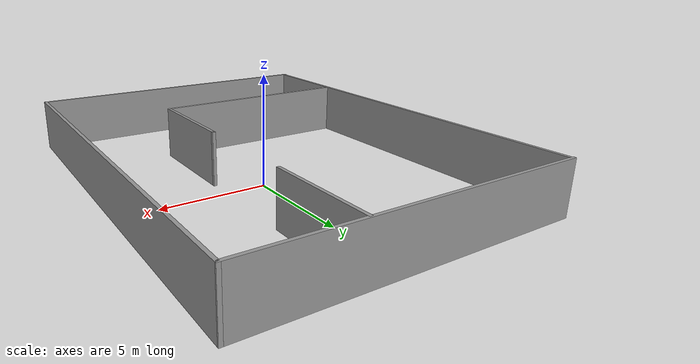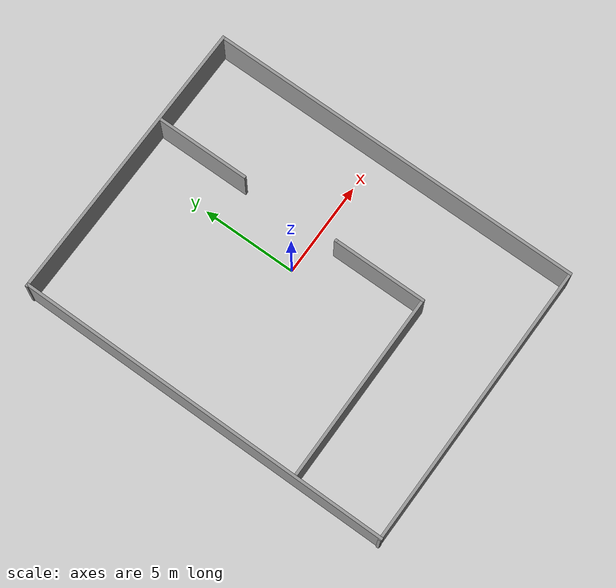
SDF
<?xml version='1.0'?>
<sdf version='1.6'>
  <model name='proj1'>
    <pose frame=''>-0.679717 -0.913886 0 0 -0 0</pose>
    <link name='Wall_0'>
      <collision name='Wall_0_Collision'>
        <geometry>
          <box>
            <size>19.9137 0.15 2.5</size>
          </box>
        </geometry>
        <pose frame=''>0 0 1.25 0 -0 0</pose>
      </collision>
      <visual name='Wall_0_Visual'>
        <pose frame=''>0 0 1.25 0 -0 0</pose>
        <geometry>
          <box>
            <size>19.9137 0.15 2.5</size>
          </box>
        </geometry>
        <material>
          <script>
            <uri>file://media/materials/scripts/gazebo.material</uri>
            <name>Gazebo/Grey</name>
          </script>
          <ambient>1 1 1 1</ambient>
        </material>
        <meta>
          <layer>0</layer>
        </meta>
      </visual>
      <pose frame=''>-7.46155 0.012801 0 0 -0 1.56832</pose>
    </link>
    <link name='Wall_1'>
      <collision name='Wall_1_Collision'>
        <geometry>
          <box>
            <size>15.1707 0.15 2.5</size>
          </box>
        </geometry>
        <pose frame=''>0 0 1.25 0 -0 0</pose>
      </collision>
      <visual name='Wall_1_Visual'>
        <pose frame=''>0 0 1.25 0 -0 0</pose>
        <geometry>
          <box>
            <size>15.1707 0.15 2.5</size>
          </box>
        </geometry>
        <material>
          <script>
            <uri>file://media/materials/scripts/gazebo.material</uri>
            <name>Gazebo/Grey</name>
          </script>
          <ambient>1 1 1 1</ambient>
        </material>
        <meta>
          <layer>0</layer>
        </meta>
      </visual>
      <pose frame=''>0.024442 9.88193 0 0 -0 -0.004933</pose>
    </link>
    <link name='Wall_10'>
      <collision name='Wall_10_Collision'>
        <geometry>
          <box>
            <size>0.15 0.15 2.5</size>
          </box>
        </geometry>
        <pose frame=''>0 0 1.25 0 -0 0</pose>
      </collision>
      <visual name='Wall_10_Visual'>
        <pose frame=''>0 0 1.25 0 -0 0</pose>
        <geometry>
          <box>
            <size>0.15 0.15 2.5</size>
          </box>
        </geometry>
        <material>
          <script>
            <uri>file://media/materials/scripts/gazebo.material</uri>
            <name>Gazebo/Grey</name>
          </script>
          <ambient>1 1 1 1</ambient>
        </material>
        <meta>
          <layer>0</layer>
        </meta>
      </visual>
      <pose frame=''>2.51072 -0.305114 0 0 -0 0</pose>
    </link>
    <link name='Wall_12'>
      <collision name='Wall_12_Collision'>
        <geometry>
          <box>
            <size>5 0.15 2.5</size>
          </box>
        </geometry>
        <pose frame=''>0 0 1.25 0 -0 0</pose>
      </collision>
      <visual name='Wall_12_Visual'>
        <pose frame=''>0 0 1.25 0 -0 0</pose>
        <geometry>
          <box>
            <size>5 0.15 2.5</size>
          </box>
        </geometry>
        <material>
          <script>
            <uri>file://media/materials/scripts/gazebo.material</uri>
            <name>Gazebo/Grey</name>
          </script>
          <ambient>1 1 1 1</ambient>
        </material>
        <meta>
          <layer>0</layer>
        </meta>
      </visual>
      <pose frame=''>2.52672 7.37889 0 0 -0 1.5708</pose>
    </link>
    <link name='Wall_4'>
      <collision name='Wall_4_Collision'>
        <geometry>
          <box>
            <size>19.9143 0.15 2.5</size>
          </box>
        </geometry>
        <pose frame=''>0 0 1.25 0 -0 0</pose>
      </collision>
      <visual name='Wall_4_Visual'>
        <pose frame=''>0 0 1.25 0 -0 0</pose>
        <geometry>
          <box>
            <size>19.9143 0.15 2.5</size>
          </box>
        </geometry>
        <material>
          <script>
            <uri>file://media/materials/scripts/gazebo.material</uri>
            <name>Gazebo/Grey</name>
          </script>
          <ambient>1 1 1 1</ambient>
        </material>
        <meta>
          <layer>0</layer>
        </meta>
      </visual>
      <pose frame=''>7.51028 -0.037018 0 0 -0 -1.57327</pose>
    </link>
    <link name='Wall_5'>
      <collision name='Wall_5_Collision'>
        <geometry>
          <box>
            <size>15.1464 0.15 2.5</size>
          </box>
        </geometry>
        <pose frame=''>0 0 1.25 0 -0 0</pose>
      </collision>
      <visual name='Wall_5_Visual'>
        <pose frame=''>0 0 1.25 0 -0 0</pose>
        <geometry>
          <box>
            <size>15.1464 0.15 2.5</size>
          </box>
        </geometry>
        <material>
          <script>
            <uri>file://media/materials/scripts/gazebo.material</uri>
            <name>Gazebo/Grey</name>
          </script>
          <ambient>1 1 1 1</ambient>
        </material>
        <meta>
          <layer>0</layer>
        </meta>
      </visual>
      <pose frame=''>-0.036622 -9.88179 0 0 -0 3.13664</pose>
    </link>
    <link name='Wall_8'>
      <collision name='Wall_8_Collision'>
        <geometry>
          <box>
            <size>10 0.15 2.5</size>
          </box>
        </geometry>
        <pose frame=''>0 0 1.25 0 -0 0</pose>
      </collision>
      <visual name='Wall_8_Visual'>
        <pose frame=''>0 0 1.25 0 -0 0</pose>
        <geometry>
          <box>
            <size>10 0.15 2.5</size>
          </box>
        </geometry>
        <material>
          <script>
            <uri>file://media/materials/scripts/gazebo.material</uri>
            <name>Gazebo/Grey</name>
          </script>
          <ambient>1 1 1 1</ambient>
        </material>
        <meta>
          <layer>0</layer>
        </meta>
      </visual>
      <pose frame=''>-2.41428 -5.15525 0 0 -0 2.8e-05</pose>
    </link>
    <link name='Wall_9'>
      <collision name='Wall_9_Collision'>
        <geometry>
          <box>
            <size>5 0.15 2.5</size>
          </box>
        </geometry>
        <pose frame=''>0 0 1.25 0 -0 0</pose>
      </collision>
      <visual name='Wall_9_Visual'>
        <pose frame=''>0 0 1.25 0 -0 0</pose>
        <geometry>
          <box>
            <size>5 0.15 2.5</size>
          </box>
        </geometry>
        <material>
          <script>
            <uri>file://media/materials/scripts/gazebo.material</uri>
            <name>Gazebo/Grey</name>
          </script>
          <ambient>1 1 1 1</ambient>
        </material>
        <meta>
          <layer>0</layer>
        </meta>
      </visual>
      <pose frame=''>2.51072 -2.73011 0 0 -0 1.5708</pose>
    </link>
    <static>1</static>
  </model>
</sdf>
